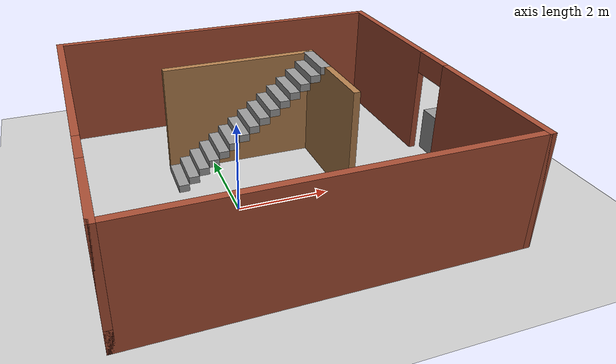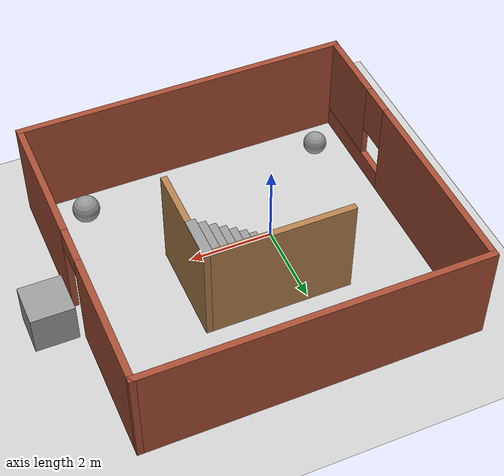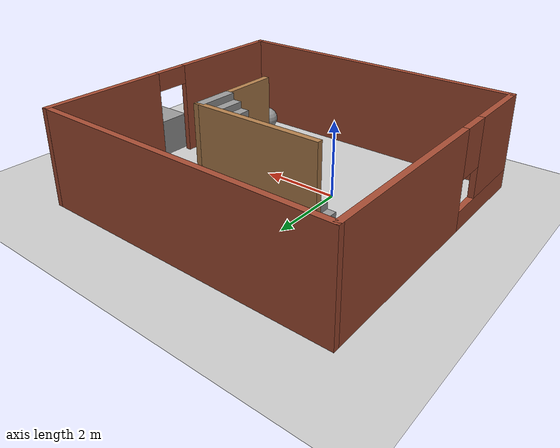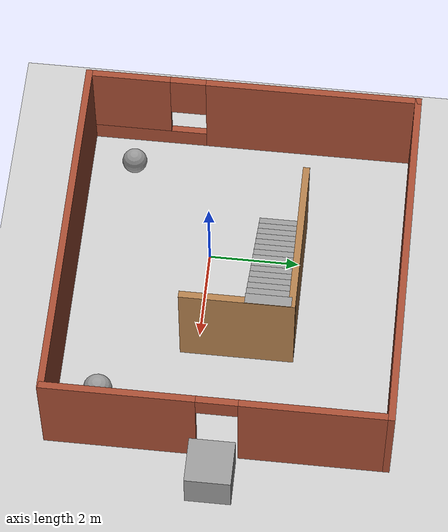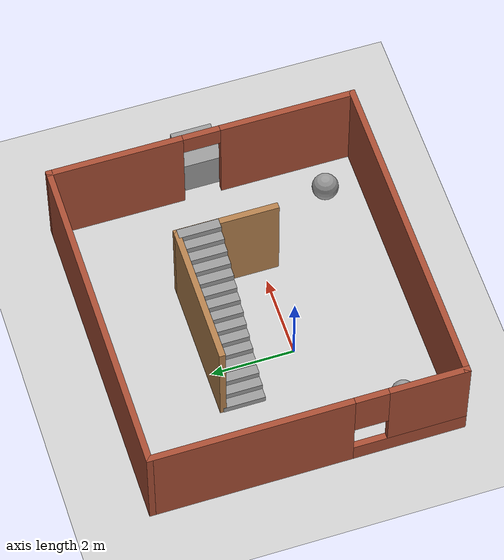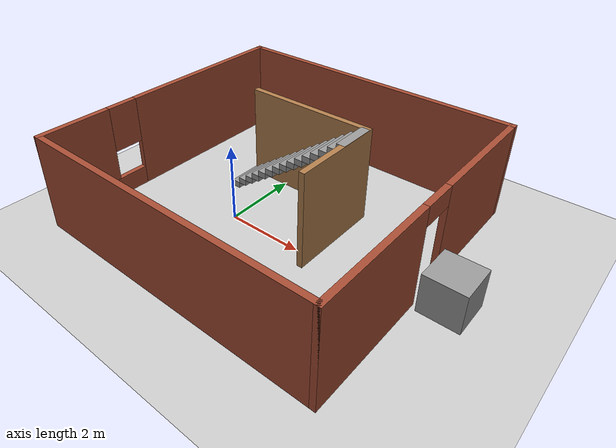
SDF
<sdf version='1.6'>
  <world name='default'>
    <light name='sun' type='directional'>
      <cast_shadows>1</cast_shadows>
      <pose frame=''>0 0 10 0 -0 0</pose>
      <diffuse>0.8 0.8 0.8 1</diffuse>
      <specular>0.1 0.1 0.1 1</specular>
      <attenuation>
        <range>1000</range>
        <constant>0.9</constant>
        <linear>0.01</linear>
        <quadratic>0.001</quadratic>
      </attenuation>
      <direction>-0.5 0.5 -1</direction>
    </light>
    <model name='ground_plane'>
      <static>1</static>
      <link name='link'>
        <collision name='collision'>
          <geometry>
            <plane>
              <normal>0 0 1</normal>
              <size>100 100</size>
            </plane>
          </geometry>
          <surface>
            <friction>
              <ode>
                <mu>100</mu>
                <mu2>50</mu2>
              </ode>
              <torsional>
                <ode/>
              </torsional>
            </friction>
            <contact>
              <ode/>
            </contact>
            <bounce/>
          </surface>
          <max_contacts>10</max_contacts>
        </collision>
        <visual name='visual'>
          <cast_shadows>0</cast_shadows>
          <geometry>
            <plane>
              <normal>0 0 1</normal>
              <size>100 100</size>
            </plane>
          </geometry>
          <material>
            <script>
              <uri>file://media/materials/scripts/gazebo.material</uri>
              <name>Gazebo/Grey</name>
            </script>
          </material>
        </visual>
        <self_collide>0</self_collide>
        <kinematic>0</kinematic>
      </link>
    </model>
    <gravity>0 0 -9.8</gravity>
    <magnetic_field>6e-06 2.3e-05 -4.2e-05</magnetic_field>
    <atmosphere type='adiabatic'/>
    <physics name='default_physics' default='0' type='ode'>
      <real_time_update_rate>0</real_time_update_rate>
    </physics>
    <scene>
      <ambient>0.4 0.4 0.4 1</ambient>
      <background>0.7 0.7 0.7 1</background>
      <shadows>1</shadows>
    </scene>
    <spherical_coordinates>
      <surface_model>EARTH_WGS84</surface_model>
      <latitude_deg>0</latitude_deg>
      <longitude_deg>0</longitude_deg>
      <elevation>0</elevation>
      <heading_deg>0</heading_deg>
    </spherical_coordinates>
    <model name='little-house'>
      <pose frame=''>0.912009 0.667413 0 0 -0 0</pose>
      <link name='Stairs_1'>
        <visual name='Stairs_1_Visual_0'>
          <pose frame=''>-1.83834 0.858587 0.083333 0 -0 1.5708</pose>
          <geometry>
            <box>
              <size>1 0.233333 0.166667</size>
            </box>
          </geometry>
          <material>
            <script>
              <uri>file://media/materials/scripts/gazebo.material</uri>
              <name>Gazebo/Grey</name>
            </script>
            <ambient>1 1 1 1</ambient>
          </material>
          <meta>
            <layer>0</layer>
          </meta>
        </visual>
        <collision name='Stairs_1_Collision_0'>
          <geometry>
            <box>
              <size>1 0.233333 0.166667</size>
            </box>
          </geometry>
          <pose frame=''>-1.83834 0.858587 0.083333 0 -0 1.5708</pose>
          <max_contacts>10</max_contacts>
          <surface>
            <contact>
              <ode/>
            </contact>
            <bounce/>
            <friction>
              <torsional>
                <ode/>
              </torsional>
              <ode/>
            </friction>
          </surface>
        </collision>
        <visual name='Stairs_1_Visual_1'>
          <pose frame=''>-1.60501 0.858587 0.25 0 -0 1.5708</pose>
          <geometry>
            <box>
              <size>1 0.233333 0.166667</size>
            </box>
          </geometry>
          <material>
            <script>
              <uri>file://media/materials/scripts/gazebo.material</uri>
              <name>Gazebo/Grey</name>
            </script>
            <ambient>1 1 1 1</ambient>
          </material>
          <meta>
            <layer>0</layer>
          </meta>
        </visual>
        <collision name='Stairs_1_Collision_1'>
          <geometry>
            <box>
              <size>1 0.233333 0.166667</size>
            </box>
          </geometry>
          <pose frame=''>-1.60501 0.858587 0.25 0 -0 1.5708</pose>
          <max_contacts>10</max_contacts>
          <surface>
            <contact>
              <ode/>
            </contact>
            <bounce/>
            <friction>
              <torsional>
                <ode/>
              </torsional>
              <ode/>
            </friction>
          </surface>
        </collision>
        <visual name='Stairs_1_Visual_2'>
          <pose frame=''>-1.37168 0.858587 0.416667 0 -0 1.5708</pose>
          <geometry>
            <box>
              <size>1 0.233333 0.166667</size>
            </box>
          </geometry>
          <material>
            <script>
              <uri>file://media/materials/scripts/gazebo.material</uri>
              <name>Gazebo/Grey</name>
            </script>
            <ambient>1 1 1 1</ambient>
          </material>
          <meta>
            <layer>0</layer>
          </meta>
        </visual>
        <collision name='Stairs_1_Collision_2'>
          <geometry>
            <box>
              <size>1 0.233333 0.166667</size>
            </box>
          </geometry>
          <pose frame=''>-1.37168 0.858587 0.416667 0 -0 1.5708</pose>
          <max_contacts>10</max_contacts>
          <surface>
            <contact>
              <ode/>
            </contact>
            <bounce/>
            <friction>
              <torsional>
                <ode/>
              </torsional>
              <ode/>
            </friction>
          </surface>
        </collision>
        <visual name='Stairs_1_Visual_3'>
          <pose frame=''>-1.13834 0.858587 0.583333 0 -0 1.5708</pose>
          <geometry>
            <box>
              <size>1 0.233333 0.166667</size>
            </box>
          </geometry>
          <material>
            <script>
              <uri>file://media/materials/scripts/gazebo.material</uri>
              <name>Gazebo/Grey</name>
            </script>
            <ambient>1 1 1 1</ambient>
          </material>
          <meta>
            <layer>0</layer>
          </meta>
        </visual>
        <collision name='Stairs_1_Collision_3'>
          <geometry>
            <box>
              <size>1 0.233333 0.166667</size>
            </box>
          </geometry>
          <pose frame=''>-1.13834 0.858587 0.583333 0 -0 1.5708</pose>
          <max_contacts>10</max_contacts>
          <surface>
            <contact>
              <ode/>
            </contact>
            <bounce/>
            <friction>
              <torsional>
                <ode/>
              </torsional>
              <ode/>
            </friction>
          </surface>
        </collision>
        <visual name='Stairs_1_Visual_4'>
          <pose frame=''>-0.905009 0.858587 0.75 0 -0 1.5708</pose>
          <geometry>
            <box>
              <size>1 0.233333 0.166667</size>
            </box>
          </geometry>
          <material>
            <script>
              <uri>file://media/materials/scripts/gazebo.material</uri>
              <name>Gazebo/Grey</name>
            </script>
            <ambient>1 1 1 1</ambient>
          </material>
          <meta>
            <layer>0</layer>
          </meta>
        </visual>
        <collision name='Stairs_1_Collision_4'>
          <geometry>
            <box>
              <size>1 0.233333 0.166667</size>
            </box>
          </geometry>
          <pose frame=''>-0.905009 0.858587 0.75 0 -0 1.5708</pose>
          <max_contacts>10</max_contacts>
          <surface>
            <contact>
              <ode/>
            </contact>
            <bounce/>
            <friction>
              <torsional>
                <ode/>
              </torsional>
              <ode/>
            </friction>
          </surface>
        </collision>
        <visual name='Stairs_1_Visual_5'>
          <pose frame=''>-0.671676 0.858587 0.916667 0 -0 1.5708</pose>
          <geometry>
            <box>
              <size>1 0.233333 0.166667</size>
            </box>
          </geometry>
          <material>
            <script>
              <uri>file://media/materials/scripts/gazebo.material</uri>
              <name>Gazebo/Grey</name>
            </script>
            <ambient>1 1 1 1</ambient>
          </material>
          <meta>
            <layer>0</layer>
          </meta>
        </visual>
        <collision name='Stairs_1_Collision_5'>
          <geometry>
            <box>
              <size>1 0.233333 0.166667</size>
            </box>
          </geometry>
          <pose frame=''>-0.671676 0.858587 0.916667 0 -0 1.5708</pose>
          <max_contacts>10</max_contacts>
          <surface>
            <contact>
              <ode/>
            </contact>
            <bounce/>
            <friction>
              <torsional>
                <ode/>
              </torsional>
              <ode/>
            </friction>
          </surface>
        </collision>
        <visual name='Stairs_1_Visual_6'>
          <pose frame=''>-0.438342 0.858587 1.08333 0 -0 1.5708</pose>
          <geometry>
            <box>
              <size>1 0.233333 0.166667</size>
            </box>
          </geometry>
          <material>
            <script>
              <uri>file://media/materials/scripts/gazebo.material</uri>
              <name>Gazebo/Grey</name>
            </script>
            <ambient>1 1 1 1</ambient>
          </material>
          <meta>
            <layer>0</layer>
          </meta>
        </visual>
        <collision name='Stairs_1_Collision_6'>
          <geometry>
            <box>
              <size>1 0.233333 0.166667</size>
            </box>
          </geometry>
          <pose frame=''>-0.438342 0.858587 1.08333 0 -0 1.5708</pose>
          <max_contacts>10</max_contacts>
          <surface>
            <contact>
              <ode/>
            </contact>
            <bounce/>
            <friction>
              <torsional>
                <ode/>
              </torsional>
              <ode/>
            </friction>
          </surface>
        </collision>
        <visual name='Stairs_1_Visual_7'>
          <pose frame=''>-0.205009 0.858587 1.25 0 -0 1.5708</pose>
          <geometry>
            <box>
              <size>1 0.233333 0.166667</size>
            </box>
          </geometry>
          <material>
            <script>
              <uri>file://media/materials/scripts/gazebo.material</uri>
              <name>Gazebo/Grey</name>
            </script>
            <ambient>1 1 1 1</ambient>
          </material>
          <meta>
            <layer>0</layer>
          </meta>
        </visual>
        <collision name='Stairs_1_Collision_7'>
          <geometry>
            <box>
              <size>1 0.233333 0.166667</size>
            </box>
          </geometry>
          <pose frame=''>-0.205009 0.858587 1.25 0 -0 1.5708</pose>
          <max_contacts>10</max_contacts>
          <surface>
            <contact>
              <ode/>
            </contact>
            <bounce/>
            <friction>
              <torsional>
                <ode/>
              </torsional>
              <ode/>
            </friction>
          </surface>
        </collision>
        <visual name='Stairs_1_Visual_8'>
          <pose frame=''>0.028324 0.858587 1.41667 0 -0 1.5708</pose>
          <geometry>
            <box>
              <size>1 0.233333 0.166667</size>
            </box>
          </geometry>
          <material>
            <script>
              <uri>file://media/materials/scripts/gazebo.material</uri>
              <name>Gazebo/Grey</name>
            </script>
            <ambient>1 1 1 1</ambient>
          </material>
          <meta>
            <layer>0</layer>
          </meta>
        </visual>
        <collision name='Stairs_1_Collision_8'>
          <geometry>
            <box>
              <size>1 0.233333 0.166667</size>
            </box>
          </geometry>
          <pose frame=''>0.028324 0.858587 1.41667 0 -0 1.5708</pose>
          <max_contacts>10</max_contacts>
          <surface>
            <contact>
              <ode/>
            </contact>
            <bounce/>
            <friction>
              <torsional>
                <ode/>
              </torsional>
              <ode/>
            </friction>
          </surface>
        </collision>
        <visual name='Stairs_1_Visual_9'>
          <pose frame=''>0.261658 0.858587 1.58333 0 -0 1.5708</pose>
          <geometry>
            <box>
              <size>1 0.233333 0.166667</size>
            </box>
          </geometry>
          <material>
            <script>
              <uri>file://media/materials/scripts/gazebo.material</uri>
              <name>Gazebo/Grey</name>
            </script>
            <ambient>1 1 1 1</ambient>
          </material>
          <meta>
            <layer>0</layer>
          </meta>
        </visual>
        <collision name='Stairs_1_Collision_9'>
          <geometry>
            <box>
              <size>1 0.233333 0.166667</size>
            </box>
          </geometry>
          <pose frame=''>0.261658 0.858587 1.58333 0 -0 1.5708</pose>
          <max_contacts>10</max_contacts>
          <surface>
            <contact>
              <ode/>
            </contact>
            <bounce/>
            <friction>
              <torsional>
                <ode/>
              </torsional>
              <ode/>
            </friction>
          </surface>
        </collision>
        <visual name='Stairs_1_Visual_10'>
          <pose frame=''>0.494991 0.858587 1.75 0 -0 1.5708</pose>
          <geometry>
            <box>
              <size>1 0.233333 0.166667</size>
            </box>
          </geometry>
          <material>
            <script>
              <uri>file://media/materials/scripts/gazebo.material</uri>
              <name>Gazebo/Grey</name>
            </script>
            <ambient>1 1 1 1</ambient>
          </material>
          <meta>
            <layer>0</layer>
          </meta>
        </visual>
        <collision name='Stairs_1_Collision_10'>
          <geometry>
            <box>
              <size>1 0.233333 0.166667</size>
            </box>
          </geometry>
          <pose frame=''>0.494991 0.858587 1.75 0 -0 1.5708</pose>
          <max_contacts>10</max_contacts>
          <surface>
            <contact>
              <ode/>
            </contact>
            <bounce/>
            <friction>
              <torsional>
                <ode/>
              </torsional>
              <ode/>
            </friction>
          </surface>
        </collision>
        <visual name='Stairs_1_Visual_11'>
          <pose frame=''>0.728325 0.858587 1.91667 0 -0 1.5708</pose>
          <geometry>
            <box>
              <size>1 0.233333 0.166667</size>
            </box>
          </geometry>
          <material>
            <script>
              <uri>file://media/materials/scripts/gazebo.material</uri>
              <name>Gazebo/Grey</name>
            </script>
            <ambient>1 1 1 1</ambient>
          </material>
          <meta>
            <layer>0</layer>
          </meta>
        </visual>
        <collision name='Stairs_1_Collision_11'>
          <geometry>
            <box>
              <size>1 0.233333 0.166667</size>
            </box>
          </geometry>
          <pose frame=''>0.728325 0.858587 1.91667 0 -0 1.5708</pose>
          <max_contacts>10</max_contacts>
          <surface>
            <contact>
              <ode/>
            </contact>
            <bounce/>
            <friction>
              <torsional>
                <ode/>
              </torsional>
              <ode/>
            </friction>
          </surface>
        </collision>
        <visual name='Stairs_1_Visual_12'>
          <pose frame=''>0.961658 0.858587 2.08333 0 -0 1.5708</pose>
          <geometry>
            <box>
              <size>1 0.233333 0.166667</size>
            </box>
          </geometry>
          <material>
            <script>
              <uri>file://media/materials/scripts/gazebo.material</uri>
              <name>Gazebo/Grey</name>
            </script>
            <ambient>1 1 1 1</ambient>
          </material>
          <meta>
            <layer>0</layer>
          </meta>
        </visual>
        <collision name='Stairs_1_Collision_12'>
          <geometry>
            <box>
              <size>1 0.233333 0.166667</size>
            </box>
          </geometry>
          <pose frame=''>0.961658 0.858587 2.08333 0 -0 1.5708</pose>
          <max_contacts>10</max_contacts>
          <surface>
            <contact>
              <ode/>
            </contact>
            <bounce/>
            <friction>
              <torsional>
                <ode/>
              </torsional>
              <ode/>
            </friction>
          </surface>
        </collision>
        <visual name='Stairs_1_Visual_13'>
          <pose frame=''>1.19499 0.858587 2.25 0 -0 1.5708</pose>
          <geometry>
            <box>
              <size>1 0.233333 0.166667</size>
            </box>
          </geometry>
          <material>
            <script>
              <uri>file://media/materials/scripts/gazebo.material</uri>
              <name>Gazebo/Grey</name>
            </script>
            <ambient>1 1 1 1</ambient>
          </material>
          <meta>
            <layer>0</layer>
          </meta>
        </visual>
        <collision name='Stairs_1_Collision_13'>
          <geometry>
            <box>
              <size>1 0.233333 0.166667</size>
            </box>
          </geometry>
          <pose frame=''>1.19499 0.858587 2.25 0 -0 1.5708</pose>
          <max_contacts>10</max_contacts>
          <surface>
            <contact>
              <ode/>
            </contact>
            <bounce/>
            <friction>
              <torsional>
                <ode/>
              </torsional>
              <ode/>
            </friction>
          </surface>
        </collision>
        <visual name='Stairs_1_Visual_14'>
          <pose frame=''>1.42833 0.858588 2.41667 0 -0 1.5708</pose>
          <geometry>
            <box>
              <size>1 0.233333 0.166667</size>
            </box>
          </geometry>
          <material>
            <script>
              <uri>file://media/materials/scripts/gazebo.material</uri>
              <name>Gazebo/Grey</name>
            </script>
            <ambient>1 1 1 1</ambient>
          </material>
          <meta>
            <layer>0</layer>
          </meta>
        </visual>
        <collision name='Stairs_1_Collision_14'>
          <geometry>
            <box>
              <size>1 0.233333 0.166667</size>
            </box>
          </geometry>
          <pose frame=''>1.42833 0.858588 2.41667 0 -0 1.5708</pose>
          <max_contacts>10</max_contacts>
          <surface>
            <contact>
              <ode/>
            </contact>
            <bounce/>
            <friction>
              <torsional>
                <ode/>
              </torsional>
              <ode/>
            </friction>
          </surface>
        </collision>
        <self_collide>0</self_collide>
        <kinematic>0</kinematic>
      </link>
      <link name='Wall_11'>
        <collision name='Wall_11_Collision'>
          <geometry>
            <box>
              <size>3.5 0.15 2.5</size>
            </box>
          </geometry>
          <pose frame=''>0 0 1.25 0 -0 0</pose>
          <max_contacts>10</max_contacts>
          <surface>
            <contact>
              <ode/>
            </contact>
            <bounce/>
            <friction>
              <torsional>
                <ode/>
              </torsional>
              <ode/>
            </friction>
          </surface>
        </collision>
        <visual name='Wall_11_Visual'>
          <pose frame=''>0 0 1.25 0 -0 0</pose>
          <geometry>
            <box>
              <size>3.5 0.15 2.5</size>
            </box>
          </geometry>
          <material>
            <script>
              <uri>file://media/materials/scripts/gazebo.material</uri>
              <name>Gazebo/Wood</name>
            </script>
            <ambient>1 1 1 1</ambient>
          </material>
          <meta>
            <layer>0</layer>
          </meta>
        </visual>
        <pose frame=''>-0.195812 1.36747 0 0 -0 0</pose>
        <self_collide>0</self_collide>
        <kinematic>0</kinematic>
      </link>
      <link name='Wall_12'>
        <collision name='Wall_12_Collision'>
          <geometry>
            <box>
              <size>2.5 0.15 2.5</size>
            </box>
          </geometry>
          <pose frame=''>0 0 1.25 0 -0 0</pose>
          <max_contacts>10</max_contacts>
          <surface>
            <contact>
              <ode/>
            </contact>
            <bounce/>
            <friction>
              <torsional>
                <ode/>
              </torsional>
              <ode/>
            </friction>
          </surface>
        </collision>
        <visual name='Wall_12_Visual'>
          <pose frame=''>0 0 1.25 0 -0 0</pose>
          <geometry>
            <box>
              <size>2.5 0.15 2.5</size>
            </box>
          </geometry>
          <material>
            <script>
              <uri>file://media/materials/scripts/gazebo.material</uri>
              <name>Gazebo/Wood</name>
            </script>
            <ambient>1 1 1 1</ambient>
          </material>
          <meta>
            <layer>0</layer>
          </meta>
        </visual>
        <pose frame=''>1.47919 0.192473 0 0 0 -1.5708</pose>
        <self_collide>0</self_collide>
        <kinematic>0</kinematic>
      </link>
      <link name='Wall_6'>
        <collision name='Wall_6_Collision'>
          <geometry>
            <box>
              <size>8 0.15 2.5</size>
            </box>
          </geometry>
          <pose frame=''>0 0 1.25 0 -0 0</pose>
          <max_contacts>10</max_contacts>
          <surface>
            <contact>
              <ode/>
            </contact>
            <bounce/>
            <friction>
              <torsional>
                <ode/>
              </torsional>
              <ode/>
            </friction>
          </surface>
        </collision>
        <visual name='Wall_6_Visual'>
          <pose frame=''>0 0 1.25 0 -0 0</pose>
          <geometry>
            <box>
              <size>8 0.15 2.5</size>
            </box>
          </geometry>
          <material>
            <script>
              <uri>file://media/materials/scripts/gazebo.material</uri>
              <name>Gazebo/Bricks</name>
            </script>
            <ambient>1 1 1 1</ambient>
          </material>
          <meta>
            <layer>0</layer>
          </meta>
        </visual>
        <pose frame=''>0 -3.675 0 0 -0 0</pose>
        <self_collide>0</self_collide>
        <kinematic>0</kinematic>
      </link>
      <link name='Wall_7'>
        <pose frame=''>3.925 0 0 0 -0 1.5708</pose>
        <visual name='Wall_7_Visual_0'>
          <pose frame=''>-2.08705 0 1.25 0 -0 0</pose>
          <geometry>
            <box>
              <size>3.3259 0.15 2.5</size>
            </box>
          </geometry>
          <material>
            <script>
              <uri>file://media/materials/scripts/gazebo.material</uri>
              <name>Gazebo/Bricks</name>
            </script>
            <ambient>1 1 1 1</ambient>
          </material>
          <meta>
            <layer>0</layer>
          </meta>
        </visual>
        <collision name='Wall_7_Collision_0'>
          <geometry>
            <box>
              <size>3.3259 0.15 2.5</size>
            </box>
          </geometry>
          <pose frame=''>-2.08705 0 1.25 0 -0 0</pose>
          <max_contacts>10</max_contacts>
          <surface>
            <contact>
              <ode/>
            </contact>
            <bounce/>
            <friction>
              <torsional>
                <ode/>
              </torsional>
              <ode/>
            </friction>
          </surface>
        </collision>
        <visual name='Wall_7_Visual_1'>
          <pose frame=''>2.11295 0 1.25 0 -0 0</pose>
          <geometry>
            <box>
              <size>3.2741 0.15 2.5</size>
            </box>
          </geometry>
          <material>
            <script>
              <uri>file://media/materials/scripts/gazebo.material</uri>
              <name>Gazebo/Bricks</name>
            </script>
            <ambient>1 1 1 1</ambient>
          </material>
          <meta>
            <layer>0</layer>
          </meta>
        </visual>
        <collision name='Wall_7_Collision_1'>
          <geometry>
            <box>
              <size>3.2741 0.15 2.5</size>
            </box>
          </geometry>
          <pose frame=''>2.11295 0 1.25 0 -0 0</pose>
          <max_contacts>10</max_contacts>
          <surface>
            <contact>
              <ode/>
            </contact>
            <bounce/>
            <friction>
              <torsional>
                <ode/>
              </torsional>
              <ode/>
            </friction>
          </surface>
        </collision>
        <visual name='Wall_7_Visual_2'>
          <pose frame=''>0.025897 0 2.25 0 -0 0</pose>
          <geometry>
            <box>
              <size>0.9 0.15 0.5</size>
            </box>
          </geometry>
          <material>
            <script>
              <uri>file://media/materials/scripts/gazebo.material</uri>
              <name>Gazebo/Bricks</name>
            </script>
            <ambient>1 1 1 1</ambient>
          </material>
          <meta>
            <layer>0</layer>
          </meta>
        </visual>
        <collision name='Wall_7_Collision_2'>
          <geometry>
            <box>
              <size>0.9 0.15 0.5</size>
            </box>
          </geometry>
          <pose frame=''>0.025897 0 2.25 0 -0 0</pose>
          <max_contacts>10</max_contacts>
          <surface>
            <contact>
              <ode/>
            </contact>
            <bounce/>
            <friction>
              <torsional>
                <ode/>
              </torsional>
              <ode/>
            </friction>
          </surface>
        </collision>
        <self_collide>0</self_collide>
        <kinematic>0</kinematic>
      </link>
      <link name='Wall_8'>
        <collision name='Wall_8_Collision'>
          <geometry>
            <box>
              <size>8 0.15 2.5</size>
            </box>
          </geometry>
          <pose frame=''>0 0 1.25 0 -0 0</pose>
          <max_contacts>10</max_contacts>
          <surface>
            <contact>
              <ode/>
            </contact>
            <bounce/>
            <friction>
              <torsional>
                <ode/>
              </torsional>
              <ode/>
            </friction>
          </surface>
        </collision>
        <visual name='Wall_8_Visual'>
          <pose frame=''>0 0 1.25 0 -0 0</pose>
          <geometry>
            <box>
              <size>8 0.15 2.5</size>
            </box>
          </geometry>
          <material>
            <script>
              <uri>file://media/materials/scripts/gazebo.material</uri>
              <name>Gazebo/Bricks</name>
            </script>
            <ambient>1 1 1 1</ambient>
          </material>
          <meta>
            <layer>0</layer>
          </meta>
        </visual>
        <pose frame=''>0 3.675 0 0 -0 3.14159</pose>
        <self_collide>0</self_collide>
        <kinematic>0</kinematic>
      </link>
      <link name='Wall_9'>
        <pose frame=''>-3.925 0 0 0 0 -1.5708</pose>
        <visual name='Wall_9_Visual_0'>
          <pose frame=''>-1.34777 0 1.25 0 -0 0</pose>
          <geometry>
            <box>
              <size>4.80446 0.15 2.5</size>
            </box>
          </geometry>
          <material>
            <script>
              <uri>file://media/materials/scripts/gazebo.material</uri>
              <name>Gazebo/Bricks</name>
            </script>
            <ambient>1 1 1 1</ambient>
          </material>
          <meta>
            <layer>0</layer>
          </meta>
        </visual>
        <collision name='Wall_9_Collision_0'>
          <geometry>
            <box>
              <size>4.80446 0.15 2.5</size>
            </box>
          </geometry>
          <pose frame=''>-1.34777 0 1.25 0 -0 0</pose>
          <max_contacts>10</max_contacts>
          <surface>
            <contact>
              <ode/>
            </contact>
            <bounce/>
            <friction>
              <torsional>
                <ode/>
              </torsional>
              <ode/>
            </friction>
          </surface>
        </collision>
        <visual name='Wall_9_Visual_1'>
          <pose frame=''>2.40223 0 0.25 0 -0 0</pose>
          <geometry>
            <box>
              <size>2.69554 0.15 0.5</size>
            </box>
          </geometry>
          <material>
            <script>
              <uri>file://media/materials/scripts/gazebo.material</uri>
              <name>Gazebo/Bricks</name>
            </script>
            <ambient>1 1 1 1</ambient>
          </material>
          <meta>
            <layer>0</layer>
          </meta>
        </visual>
        <collision name='Wall_9_Collision_1'>
          <geometry>
            <box>
              <size>2.69554 0.15 0.5</size>
            </box>
          </geometry>
          <pose frame=''>2.40223 0 0.25 0 -0 0</pose>
          <max_contacts>10</max_contacts>
          <surface>
            <contact>
              <ode/>
            </contact>
            <bounce/>
            <friction>
              <torsional>
                <ode/>
              </torsional>
              <ode/>
            </friction>
          </surface>
        </collision>
        <visual name='Wall_9_Visual_2'>
          <pose frame=''>2.80223 0 1.5 0 -0 0</pose>
          <geometry>
            <box>
              <size>1.89554 0.15 2</size>
            </box>
          </geometry>
          <material>
            <script>
              <uri>file://media/materials/scripts/gazebo.material</uri>
              <name>Gazebo/Bricks</name>
            </script>
            <ambient>1 1 1 1</ambient>
          </material>
          <meta>
            <layer>0</layer>
          </meta>
        </visual>
        <collision name='Wall_9_Collision_2'>
          <geometry>
            <box>
              <size>1.89554 0.15 2</size>
            </box>
          </geometry>
          <pose frame=''>2.80223 0 1.5 0 -0 0</pose>
          <max_contacts>10</max_contacts>
          <surface>
            <contact>
              <ode/>
            </contact>
            <bounce/>
            <friction>
              <torsional>
                <ode/>
              </torsional>
              <ode/>
            </friction>
          </surface>
        </collision>
        <visual name='Wall_9_Visual_3'>
          <pose frame=''>1.45446 0 1.9 0 -0 0</pose>
          <geometry>
            <box>
              <size>0.8 0.15 1.2</size>
            </box>
          </geometry>
          <material>
            <script>
              <uri>file://media/materials/scripts/gazebo.material</uri>
              <name>Gazebo/Bricks</name>
            </script>
            <ambient>1 1 1 1</ambient>
          </material>
          <meta>
            <layer>0</layer>
          </meta>
        </visual>
        <collision name='Wall_9_Collision_3'>
          <geometry>
            <box>
              <size>0.8 0.15 1.2</size>
            </box>
          </geometry>
          <pose frame=''>1.45446 0 1.9 0 -0 0</pose>
          <max_contacts>10</max_contacts>
          <surface>
            <contact>
              <ode/>
            </contact>
            <bounce/>
            <friction>
              <torsional>
                <ode/>
              </torsional>
              <ode/>
            </friction>
          </surface>
        </collision>
        <self_collide>0</self_collide>
        <kinematic>0</kinematic>
      </link>
      <static>1</static>
    </model>
    <model name='unit_box'>
      <pose frame=''>5.52421 0.608395 0.5 0 -0 0</pose>
      <link name='link'>
        <inertial>
          <mass>1</mass>
          <inertia>
            <ixx>0.166667</ixx>
            <ixy>0</ixy>
            <ixz>0</ixz>
            <iyy>0.166667</iyy>
            <iyz>0</iyz>
            <izz>0.166667</izz>
          </inertia>
        </inertial>
        <collision name='collision'>
          <geometry>
            <box>
              <size>1 1 1</size>
            </box>
          </geometry>
          <max_contacts>10</max_contacts>
          <surface>
            <contact>
              <ode/>
            </contact>
            <bounce/>
            <friction>
              <torsional>
                <ode/>
              </torsional>
              <ode/>
            </friction>
          </surface>
        </collision>
        <visual name='visual'>
          <geometry>
            <box>
              <size>1 1 1</size>
            </box>
          </geometry>
          <material>
            <script>
              <name>Gazebo/Grey</name>
              <uri>file://media/materials/scripts/gazebo.material</uri>
            </script>
          </material>
        </visual>
        <self_collide>0</self_collide>
        <kinematic>0</kinematic>
      </link>
    </model>
    <gui fullscreen='0'>
      <camera name='user_camera'>
        <pose frame=''>1.0677 0.989439 7.03636 5e-06 1.15549 -1.78142</pose>
        <view_controller>orbit</view_controller>
        <projection_type>perspective</projection_type>
      </camera>
    </gui>
    <model name='goal1'>
      <pose frame=''>0 0 0 0 0 0</pose>
      <link name='link'>
        <pose frame=''>-2.05555 -1.93096 0.5 0 -0 0</pose>
        <self_collide>0</self_collide>
        <kinematic>0</kinematic>
        <gravity>0</gravity>
        <visual name='visual'>
          <geometry>
            <sphere>
              <radius>0.279486</radius>
            </sphere>
          </geometry>
          <material>
            <script>
              <name>Gazebo/Grey</name>
              <uri>file://media/materials/scripts/gazebo.material</uri>
            </script>
            <ambient>0.3 0.3 0.3 1</ambient>
            <diffuse>0.7 0.7 0.7 1</diffuse>
            <specular>0.01 0.01 0.01 1</specular>
            <emissive>0 0 0 1</emissive>
            <shader type='vertex'>
              <normal_map>__default__</normal_map>
            </shader>
          </material>
          <pose frame=''>0 0 0 0 -0 0</pose>
          <transparency>0</transparency>
          <cast_shadows>1</cast_shadows>
        </visual>
      </link>
      <static>0</static>
      <allow_auto_disable>1</allow_auto_disable>
    </model>
    <model name='goal0'>
      <pose frame=''>0 0 0 0 0 0</pose>
      <link name='link'>
        <pose frame=''>3.79842 -2.02792 0.5 0 -0 0</pose>
        <self_collide>0</self_collide>
        <kinematic>0</kinematic>
        <gravity>0</gravity>
        <visual name='visual'>
          <geometry>
            <sphere>
              <radius>0.319368</radius>
            </sphere>
          </geometry>
          <material>
            <script>
              <name>Gazebo/Grey</name>
              <uri>file://media/materials/scripts/gazebo.material</uri>
            </script>
            <ambient>0.3 0.3 0.3 1</ambient>
            <diffuse>0.7 0.7 0.7 1</diffuse>
            <specular>0.01 0.01 0.01 1</specular>
            <emissive>0 0 0 1</emissive>
            <shader type='vertex'>
              <normal_map>__default__</normal_map>
            </shader>
          </material>
          <pose frame=''>0 0 0 0 -0 0</pose>
          <transparency>0</transparency>
          <cast_shadows>1</cast_shadows>
        </visual>
      </link>
      <static>0</static>
      <allow_auto_disable>1</allow_auto_disable>
    </model>
  </world>
</sdf>
